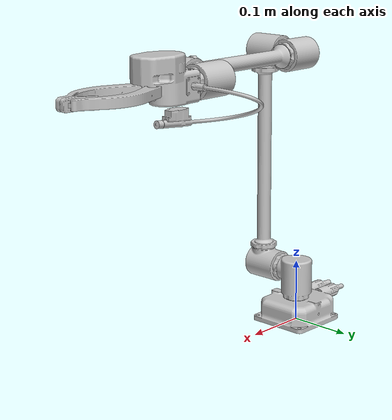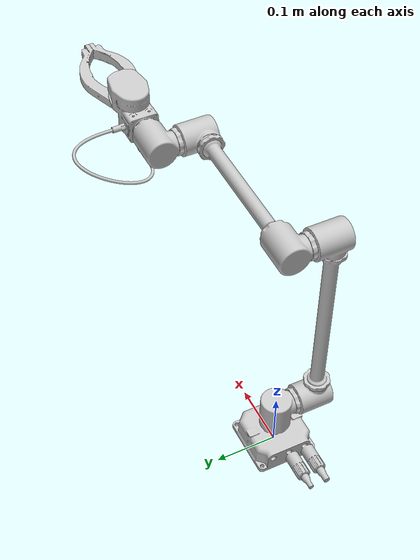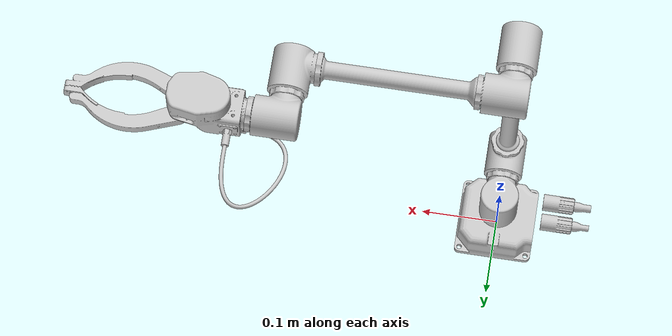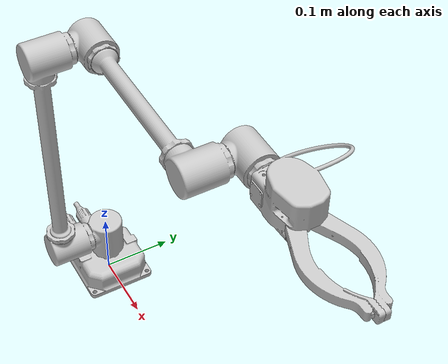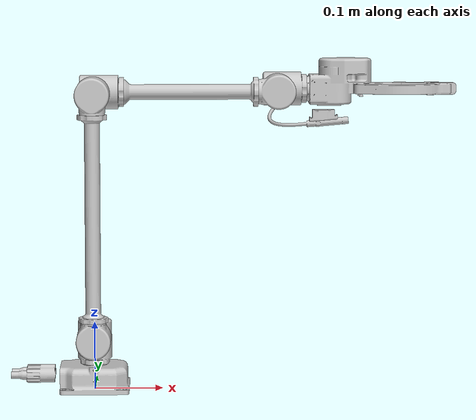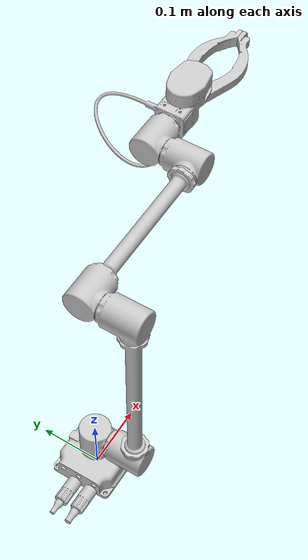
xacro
<?xml version="1.0"?>
<robot name="hdt_arm" xmlns:xacro="http://www.ros.org/wiki/xacro">
    <mujoco>
        <compiler
        meshdir="../meshes/"
        fusestatic= "true"
        balanceinertia="true"
        strippath="true"
        discardvisual="false"/>
  </mujoco>

    <!-- constants -->
    <xacro:property name="M_PI" value="3.1415926535897931"/>

    <xacro:property name="drive_length" value="0.047"/>
    <xacro:property name="a35_length" value="0.03855"/>

    <!--xacro:property name="drive_offset" value="0.033"/-->
    <xacro:property name="tube_diameter" value="0.0515"/>
    <xacro:property name="pedestal_height" value="0.03859"/>
    <xacro:property name="pedestal_boss" value="0.0448"/>
    <xacro:property name="drive_offset" value="0.02455"/>
    <xacro:property name="pincer_offset" value="0.0415"/>

    <xacro:property name="a24_proximal_length" value="0.353"/>
    <xacro:property name="a24_distal_length" value="0.344"/>
    <xacro:property name="a35_proximal_length" value="0.308"/>
    <xacro:property name="a35_distal_length" value="0.19"/>

    <!-- materials -->
    <material name="black">
        <color rgba="${200/255} ${200/255} ${200/255} 1.0"/>
    </material>

    <material name="grey">
        <color rgba="${64/255} ${64/255} ${64/255} 1.0"/>
    </material>

    <material name="yellow">
        <color rgba="${240/255} ${224/255} ${64/255} 1.0"/>
    </material>

     <!-- default inertia -->
     <xacro:macro name="default_inertia">
           <inertia
           ixx="0.005" ixy="0.0" ixz="0.0"
           iyy="0.005" iyz="0.0"
           izz="0.005"/>
     </xacro:macro>

    <!-- segment 0 -->
    <link name="base_link"/>

    <!-- pedestal -->
    <joint name="pedestal_joint" type="fixed">
        <origin xyz="0 0 0" rpy="0 0 0"/>
        <parent link="base_link"/>
        <child link="pedestal_link"/>
    </joint>

    <link name="pedestal_link">
        <collision>
            <origin xyz="0 0 0" rpy="0 0 0"/>
            <geometry>
                <mesh filename="package://hdt_angler_description/meshes/H026994 - A35 M-2 PEDESTAL ASSY - SHAREABLE.STL"/>
            </geometry>
        </collision>

        <visual>
            <origin xyz="0 0 0" rpy="0 0 0"/>
            <geometry>
                <mesh filename="package://hdt_angler_description/meshes/H026994 - A35 M-2 PEDESTAL ASSY - SHAREABLE.STL"/>
            </geometry>
            <material name="black"/>
        </visual>

        <inertial>
            <origin xyz="0 0 0" rpy="0 0 0"/>
            <mass value="1"/>
            <xacro:default_inertia />
        </inertial>
    </link>

    <!-- drive 1 -->
    <joint name="drive1_joint" type="revolute">
        <axis xyz="0 0 1"/>
        <limit effort="60.0" lower="${-2*M_PI}" upper="${2*M_PI}" velocity="${M_PI/4}"/>
        <origin xyz="0 0 ${(pedestal_boss+a35_length)}" rpy="0 0 ${-M_PI/2}"/>
        <parent link="pedestal_link"/>
        <child link="drive1_link"/>
        <dynamics damping="0.7" friction="0.0"/>
    </joint>

    <link name="drive1_link">
        <collision>
            <origin xyz="0 0 0" rpy="0 0 0"/>
            <geometry>
                <mesh filename="package://hdt_angler_description/meshes/H024840 - A35 M-2 DRIVE MODULE, SHAREABLE.STL"/>
            </geometry>
        </collision>

        <visual>
            <origin xyz="0 0 0" rpy="0 0 0"/>
            <geometry>
                <mesh filename="package://hdt_angler_description/meshes/H024840 - A35 M-2 DRIVE MODULE, SHAREABLE.STL"/>
            </geometry>
            <material name="black"/>
        </visual>

        <inertial>
            <origin xyz="0 0 0" rpy="0 0 0"/>
            <mass value="1"/>
            <xacro:default_inertia />
        </inertial>
    </link>

    <!-- drive 2 -->
    <joint name="drive2_joint" type="revolute">
        <axis xyz="0 0 1"/>
        <limit effort="60.0" lower="${-M_PI/2}" upper="${M_PI/2}" velocity="${M_PI/4}"/>
        <origin xyz="${drive_offset+drive_length} 0 0" rpy="0 -${M_PI/2} 0"/>
        <parent link="drive1_link"/>
        <child link="drive2_link"/>
        <dynamics damping="0.7" friction="0.0"/>
    </joint>

    <link name="drive2_link">
        <collision>
            <origin xyz="0 0 0" rpy="${M_PI} 0 0"/>
            <geometry>
                <mesh filename="package://hdt_angler_description/meshes/H024840 - A35 M-2 DRIVE MODULE, SHAREABLE.STL"/>
            </geometry>
        </collision>

        <visual>
            <origin xyz="0 0 0" rpy="${M_PI} 0 0"/>
            <geometry>
                <mesh filename="package://hdt_angler_description/meshes/H024840 - A35 M-2 DRIVE MODULE, SHAREABLE.STL"/>
            </geometry>
            <material name="black"/>
        </visual>

        <inertial>
            <origin xyz="0 0 0" rpy="${M_PI} 0 0"/>
            <mass value="1"/>
            <xacro:default_inertia />
        </inertial>
    </link>

    <!-- humerus -->
    <joint name="humerus_joint" type="fixed">
        <origin xyz="${a35_proximal_length/2+drive_offset} 0 0" rpy="0 0 0" />
        <parent link="drive2_link"/>
        <child link="humerus_link"/>
    </joint>

    <link name="humerus_link">
        <collision>
            <origin xyz="0 0 0" rpy="0 0 0"/>
            <geometry>
                <mesh filename="package://hdt_angler_description/meshes/H024847 - A35 M-2 PROXIMAL TUBE ASSY - SHAREABLE.STL"/>
            </geometry>
        </collision>

        <visual>
            <origin xyz="0 0 0" rpy="0 0 0"/>
            <geometry>
                <mesh filename="package://hdt_angler_description/meshes/H024847 - A35 M-2 PROXIMAL TUBE ASSY - SHAREABLE.STL"/>
            </geometry>
            <material name="black"/>
        </visual>

        <inertial>
            <origin xyz="0 0 0" rpy="0 0 0"/>
            <mass value="1"/>
            <xacro:default_inertia />
        </inertial>
    </link>

    <!-- elbow -->
    <joint name="elbow_joint" type="fixed">
        <origin xyz="${a35_proximal_length/2+drive_offset} 0 0" rpy="0 0 0"/>
        <parent link="humerus_link"/>
        <child link="elbow_link"/>
    </joint>

    <link name="elbow_link">
        <collision>
            <origin xyz="0 0 0" rpy="0 ${M_PI} 0"/>
            <geometry>
                <mesh filename="package://hdt_angler_description/meshes/H024840 - A35 M-2 DRIVE MODULE, SHAREABLE.STL"/>
            </geometry>
        </collision>

        <visual>
            <origin xyz="0 0 0" rpy="0 ${M_PI} 0"/>
            <geometry>
                <mesh filename="package://hdt_angler_description/meshes/H024840 - A35 M-2 DRIVE MODULE, SHAREABLE.STL"/>
            </geometry>
            <material name="black"/>
        </visual>

        <inertial>
            <origin xyz="0 0 0" rpy="0 ${M_PI} 0"/>
            <mass value="1"/>
            <xacro:default_inertia />
        </inertial>
    </link>

    <!-- drive 3 -->
    <joint name="drive3_joint" type="revolute">
        <axis xyz="0 0 1"/>
	<!-- position limits to match parameter settings on actuator -->
        <limit effort="60.0" lower="-4.49" upper="1.35" velocity="${M_PI/4}"/>
        <origin xyz="0 0 ${drive_length+drive_offset}" rpy="0 0 0"/>
        <parent link="elbow_link"/>
        <child link="drive3_link"/>
        <dynamics damping="0.7" friction="0.0"/>
    </joint>

    <link name="drive3_link">
        <collision>
            <origin xyz="0 0 0" rpy="0 ${M_PI/2} -${M_PI/2}"/>
            <geometry>
                <mesh filename="package://hdt_angler_description/meshes/H024840 - A35 M-2 DRIVE MODULE, SHAREABLE.STL"/>
            </geometry>
        </collision>

        <visual>
            <origin xyz="0 0 0" rpy="0 ${M_PI/2} -${M_PI/2}"/>
            <geometry>
                <mesh filename="package://hdt_angler_description/meshes/H024840 - A35 M-2 DRIVE MODULE, SHAREABLE.STL"/>
            </geometry>
            <material name="black"/>
        </visual>

        <inertial>
            <origin xyz="0 0 0" rpy="0 ${M_PI/2} -${M_PI/2}"/>
            <mass value="1"/>
            <xacro:default_inertia />
        </inertial>
    </link>

     <!-- drive 4 -->
    <joint name="drive4_joint" type="revolute">
        <axis xyz="0 0 1"/>
        <limit effort="60.0" lower="${-2*M_PI}" upper="${2*M_PI}" velocity="${M_PI/4}"/>
        <origin xyz="0 ${a35_distal_length/2 + drive_length} 0" rpy="-${M_PI/2} 0 0"/>
        <parent link="drive3_link"/>
        <child link="drive4_link"/>
        <dynamics damping="0.7" friction="0.0"/>
    </joint>

    <link name="drive4_link">
        <collision>
            <origin xyz="0 0 0" rpy="${M_PI} 0 0"/>
            <geometry>
                <mesh filename="package://hdt_angler_description/meshes/H024848 - A35 M-2 DISTAL TUBE ASSY - SHAREABLE.STL"/>
            </geometry>
        </collision>

        <visual>
            <origin xyz="0 0 0" rpy="${M_PI} 0 0"/>
            <geometry>
                <mesh filename="package://hdt_angler_description/meshes/H024848 - A35 M-2 DISTAL TUBE ASSY - SHAREABLE.STL"/>
            </geometry>
            <material name="black"/>
        </visual>

        <inertial>
            <origin xyz="0 0 0" rpy="${M_PI} 0 0"/>
            <mass value="1"/>
            <xacro:default_inertia />
        </inertial>
    </link>

    <!-- wrist -->
    <joint name="wrist_joint" type="fixed">
        <origin xyz="0 0 ${a35_distal_length/2 + drive_offset + 0.01}" rpy="${M_PI/2} -${M_PI/2} ${M_PI}"/>
        <parent link="drive4_link"/>
        <child link="wrist_link"/>
    </joint>

    <link name="wrist_link">
        <collision>
            <origin xyz="0 0 0" rpy="0 0 ${M_PI}"/>
            <geometry>
                <mesh filename="package://hdt_angler_description/meshes/H024840 - A35 M-2 DRIVE MODULE, SHAREABLE.STL"/>
            </geometry>
        </collision>

        <visual>
            <origin xyz="0 0 0" rpy="0 0 ${M_PI}"/>
            <geometry>
                <mesh filename="package://hdt_angler_description/meshes/H024840 - A35 M-2 DRIVE MODULE, SHAREABLE.STL"/>
            </geometry>
            <material name="black"/>
        </visual>

        <inertial>
            <origin xyz="0 0 0" rpy="0 0 ${M_PI}"/>
            <mass value="1"/>
            <xacro:default_inertia />
        </inertial>
    </link>

     <!-- drive 5 -->
    <joint name="drive5_joint" type="revolute">
        <axis xyz="0 0 1"/>
        <limit effort="60.0" lower="${-M_PI*2}" upper="${M_PI*2}" velocity="${M_PI/4}"/>
        <origin xyz="0 0 -${drive_length + drive_offset}" rpy="${M_PI} 0 0"/>
        <parent link="wrist_link"/>
        <child link="drive5_link"/>
        <dynamics damping="0.7" friction="0.0"/>
    </joint>

    <link name="drive5_link">
        <collision>
            <origin xyz="0 0 0" rpy="0 ${M_PI/2} ${M_PI}"/>
            <geometry>
                <mesh filename="package://hdt_angler_description/meshes/H024840 - A35 M-2 DRIVE MODULE, SHAREABLE.STL"/>
            </geometry>
        </collision>

        <visual>
            <origin xyz="0 0 0" rpy="0 ${M_PI/2} ${M_PI}"/>
            <geometry>
                <mesh filename="package://hdt_angler_description/meshes/H024840 - A35 M-2 DRIVE MODULE, SHAREABLE.STL"/>
            </geometry>
            <material name="black"/>
        </visual>

        <inertial>
            <origin xyz="0 0 0" rpy="0 0 0"/>
            <mass value="1"/>
            <xacro:default_inertia />
        </inertial>
    </link>

        <!-- drive 6 -->
    <joint name="drive6_joint" type="revolute">
        <axis xyz="0 0 1"/>
        <limit effort="60.0" lower="${-M_PI*2}" upper="${M_PI*2}" velocity="${M_PI/4}"/>
        <origin xyz="${drive_length + pincer_offset} 0 0" rpy="0 ${M_PI/2} 0"/>
        <parent link="drive5_link"/>
        <child link="drive6_link"/>
        <dynamics damping="0.7" friction="0.0"/>
    </joint>

    <link name="drive6_link">
        <collision>
            <origin xyz="0 0 0" rpy="0 ${M_PI/2} -${M_PI/2}"/>
            <geometry>
                <mesh filename="package://hdt_angler_description/meshes/H024842 - A35 M-2 PINCER ASSY - SHAREABLE, UNDERWATER.STL"/>
            </geometry>
        </collision>

        <visual>
            <origin xyz="0 0 0" rpy="0 ${M_PI/2} -${M_PI/2}"/>
            <geometry>
                <mesh filename="package://hdt_angler_description/meshes/H024842 - A35 M-2 PINCER ASSY - SHAREABLE, UNDERWATER.STL"/>
            </geometry>
            <material name="black"/>
        </visual>

        <inertial>
            <origin xyz="0 0 0" rpy="0 0 0"/>
            <mass value="1"/>
            <xacro:default_inertia />
        </inertial>
    </link>

    <!-- Pincers -->
    <joint name="pincer_joint" type="revolute">
        <hdt id="10" kmin="75" kmax="150" inertia="0.075"/>
        <axis xyz="0 0 1"/>
        <limit effort="60.0" lower="-0.2" upper="0.9" velocity="0.5"/>
        <origin xyz="0.0135 0 0.0375" rpy="-${M_PI/2} -${M_PI/2} 0"/>
        <parent link="drive6_link"/>
        <child link="pincer_link"/>
        <dynamics damping="0.7" friction="0.0"/>
    </joint>

    <link name="pincer_link">
    <collision>
        <origin xyz="0 0 0" rpy="${M_PI} 0 0"/>
        <geometry>
            <mesh filename="package://hdt_angler_description/meshes/H022927 - A35 PINCER FINGER, LONG, OVERMOLD ASSY - SHAREABLE.STL"/>
        </geometry>
    </collision>

    <visual>
        <origin xyz="0 0 0" rpy="${M_PI} 0 0"/>
        <geometry>
            <mesh filename="package://hdt_angler_description/meshes/H022927 - A35 PINCER FINGER, LONG, OVERMOLD ASSY - SHAREABLE.STL"/>
        </geometry>
        <material name="black"/>
    </visual>

    </link>
    <!-- EE 2 -->
    <!-- THIS IS THE SECOND PINCER, NEEDS TO MOVE EQUAL BUT OPPOSITE AS PINCER 1 -->
    <joint name="pincer_joint2" type="revolute">
        <axis xyz="0 0 1"/>
        <origin xyz="-0.0135 0 0.0375" rpy="-${M_PI/2} -${M_PI/2} ${M_PI}"/>
        <parent link="drive6_link"/>
        <child link="pincer_link2"/>
        <calibration rising="0.0"/>
        <dynamics damping="0.7" friction="0.0"/>
        <limit effort="60.0" lower="-0.2" upper="1" velocity="0.5"/>
        <mimic joint="pincer_joint" multiplier="1" offset="0.0"/>
    </joint>

    <link name="pincer_link2">
        <collision>
            <origin xyz="0 0 0" rpy="${M_PI} 0 0"/>
            <geometry>
            <mesh filename="package://hdt_angler_description/meshes/H022927 - A35 PINCER FINGER, LONG, OVERMOLD ASSY - SHAREABLE.STL"/>
            </geometry>
        </collision>

        <visual>
            <origin xyz="0 0 0" rpy="${M_PI} 0 0"/>
            <geometry>
                <mesh filename="package://hdt_angler_description/meshes/H022927 - A35 PINCER FINGER, LONG, OVERMOLD ASSY - SHAREABLE.STL"/>
            </geometry>
            <material name="black"/>
        </visual>
    </link>

    <!-- endpoint -->
    <joint name="endpoint_joint" type="fixed">
        <origin xyz="0 0 0.17" rpy="${M_PI/2} ${-M_PI/2} 0"/>
        <parent link="drive6_link"/>
        <child link="endpoint_link"/>
    </joint>

    <link name="endpoint_link">
    </link>
</robot>
